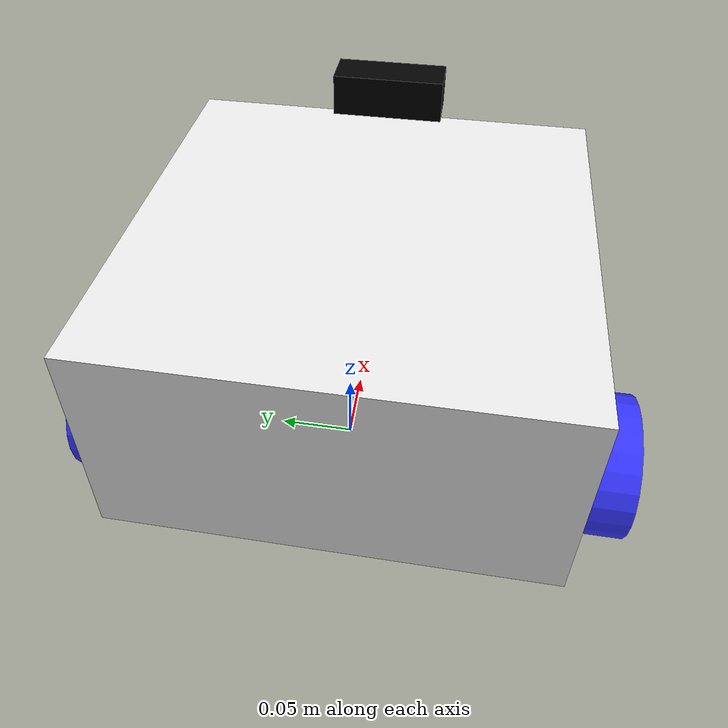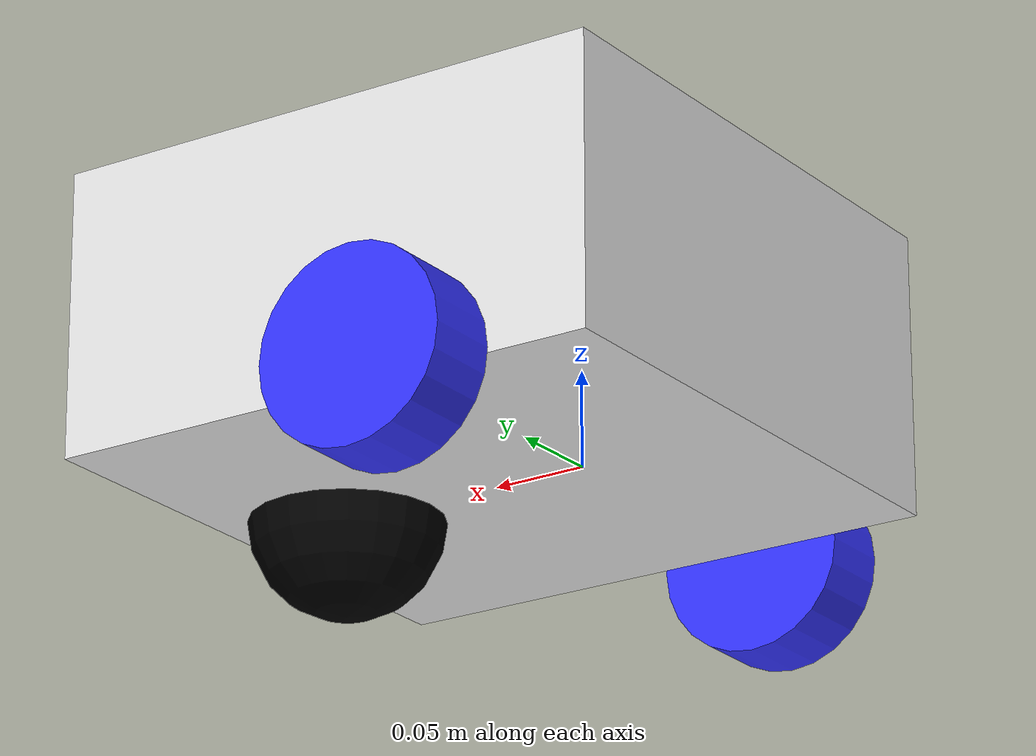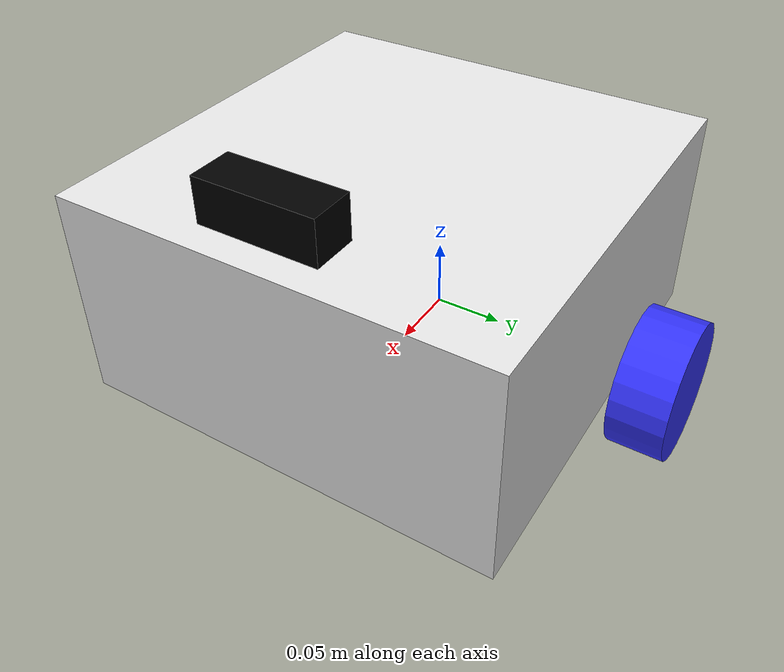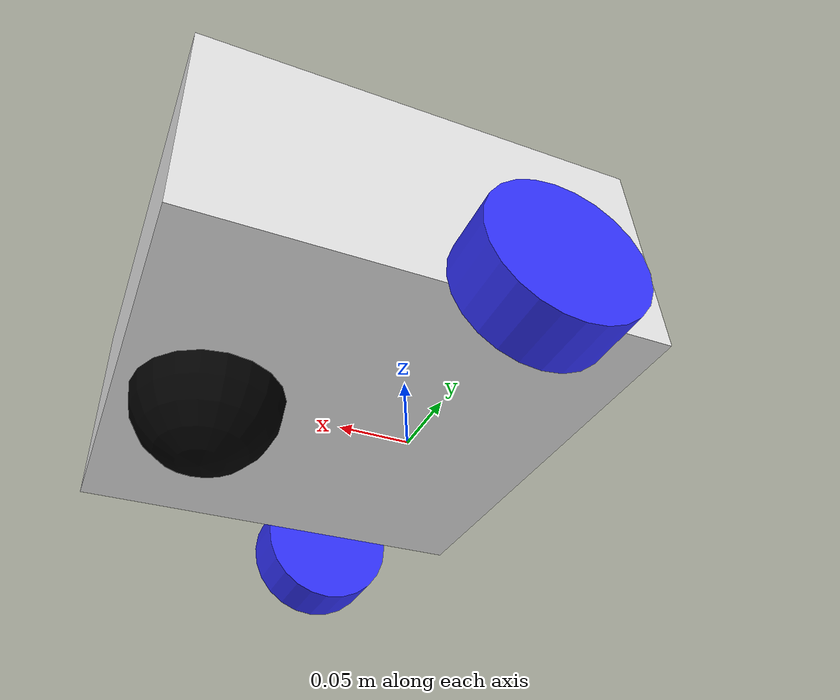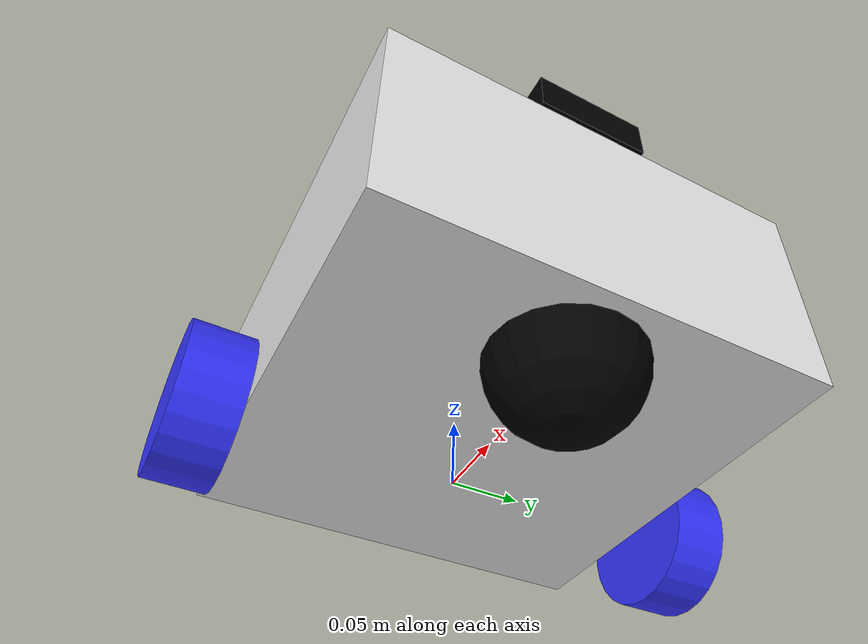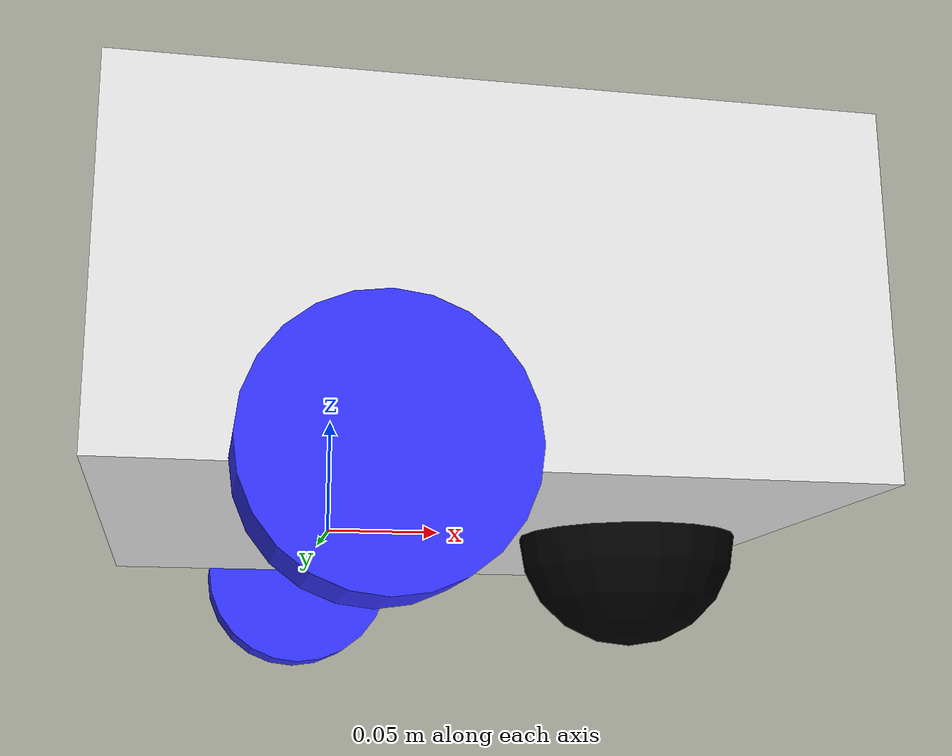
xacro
<?xml version="1.0"?>
<robot xmlns:xacro="http://www.ros.org/wiki/xacro" name="robot">

    <!-- Robot description-->
    <xacro:include filename="robot_core.xacro" />

    <xacro:include filename="gazebo_control.xacro" />

    <!-- Camera description -->
    <xacro:include filename="camera.xacro" />
</robot>

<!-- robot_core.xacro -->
<!-- Following: https://www.youtube.com/watch?v=BcjHyhV0kIs -->
<robot xmlns:xacro="http://www.ros.org/wiki/xacro" >

    <!-- Import intertia macros so they're easier to define-->
    <xacro:include filename="intertial_macros.xacro" />

    <material name="off_white">
        <color rgba="0.9 0.9 0.9 1" />
    </material>
    <material name="orange">
        <color rgba="1 0.3 0.1 1" />
    </material>
    <material name="blue">
        <color rgba="0.2 0.2 1 1" />
    </material>
    <material name="black">
        <color rgba="0 0 0 1" />
    </material>

    <!-- Base Link -->
    <link name="base_link">
    </link>

    <!-- Chassis Link -->

    <joint name="chassis_joint" type="fixed">
        <parent link="base_link" />
        <child link="chassis" />
        <origin xyz="-0.1 0 0"/>
    </joint>

    <link name="chassis">
        <visual>
            <origin xyz="0.15 0 0.075" />
            <geometry>
                <box size="0.3 0.3 0.15" />
            </geometry>
            <material name="off_white" />
        </visual>
        <collision>
            <origin xyz="0.15 0 0.075" />
            <geometry>
                <box size="0.3 0.3 0.15" />
            </geometry>
        </collision>
        <xacro:inertial_box mass="0.5" x="0.3" y="0.3" z="0.15">
            <origin xyz="0.15 0 0.075"  rpy="0 0 0 "/>
        </xacro:inertial_box>
    </link>

    <!-- Left Wheel Link -->
    <joint name="left_wheel_joint" type="continuous">
        <parent link="base_link" />
        <child link="left_wheel" />
        <!-- cylinders are oriented in z axis by default so we need to rotate  along x axis (right hand rule for sign)-->
        <origin xyz="0 0.175 0" rpy="-${pi/2} 0 0" />
        <!-- define the positve forward motion; since we rotated the wheel, the z axis is now pointing where y was so we want to rotate around z-->
        <axis xyz="0 0 1" />
    </joint>
    <link name="left_wheel">
        <visual>
            <geometry>
                <cylinder radius="0.05" length="0.04" /> <!-- 50 mm and 40 mm-->
            </geometry>
            <material name="blue" />
        </visual>
        <collision>
            <geometry>
                <cylinder radius="0.05" length="0.04" /> <!-- 50 mm and 40 mm-->
            </geometry>
        </collision>
        <xacro:inertial_cylinder mass="0.1" length="0.04" radius="0.05">
            <origin xyz="0 0 0"  rpy="0 0 0"/>
        </xacro:inertial_cylinder>
    </link>

    <!-- Right Wheel Link -->
    <joint name="right_wheel_joint" type="continuous">
        <parent link="base_link" />
        <child link="right_wheel" />
        <!-- cylinders are oriented in z axis by default so we need to rotate  along x axis (right hand rule for sign)-->
        <origin xyz="0 -0.175 0" rpy="${pi/2} 0 0" />
        <!-- define the positve forward motion; since we rotated the wheel, the z axis is now pointing where y was so we want to rotate around z-->
        <axis xyz="0 0 -1" />
    </joint>
    <link name="right_wheel">
        <visual>
            <geometry>
                <cylinder radius="0.05" length="0.04" /> <!-- 50 mm and 40 mm-->
            </geometry>
            <material name="blue" />
        </visual>
        <collision>
            <geometry>
                <cylinder radius="0.05" length="0.04" /> <!-- 50 mm and 40 mm-->
            </geometry>
        </collision>
        <xacro:inertial_cylinder mass="0.1" length="0.04" radius="0.05">
            <origin xyz="0 0 0"  rpy="0 0 0"/>
        </xacro:inertial_cylinder>
    </link>

    <!-- Caster Wheel Link -->
    <joint name="caster_wheel_joint" type="fixed">
        <parent link="chassis" />
        <child link="caster_wheel" />
        <origin xyz="0.24 0 0"/> <!-- Close to the front of the bot -->
    </joint>
    <link name="caster_wheel">
        <visual>
            <geometry>
                <sphere radius="0.05" />
            </geometry>
            <material name="black" />
        </visual>
        <collision>
            <geometry>
                <sphere radius="0.05" />
            </geometry>
        </collision>
        <xacro:inertial_sphere mass="0.1" radius="0.05">
            <origin xyz="0 0 0" rpy="0 0 0 " />
        </xacro:inertial_sphere>
    </link>

    <gazebo reference="caster_wheel">
        <mu1>0.001</mu1> <!-- mus make the caster wheel frictionless -->
        <mu2>0.001</mu2>
    </gazebo>

</robot>

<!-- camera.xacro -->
<robot xmlns:xacro="http://www.ros.org/wiki/xacro">

    <joint name="camera_joint" type="fixed">
        <parent link="chassis"/>
        <child link="camera_link"/>
        <origin xyz="0.28 0 0.18" rpy="0 0 0"/>
    </joint>

    <link name="camera_link">
        <visual>
        <geometry>
            <box size="0.03 0.08 0.03"/>
        </geometry>
        <material name="black"/>
        </visual>
    </link>

    <gazebo reference="camera_link">
        <sensor type="camera" name="camera">

            <!-- simplify the camera topic name -->
            <topic>camera/image</topic>

            <pose>0 0 0 0 0 0</pose>
            <visualize>true</visualize>

            <!-- 5 hz which is about 5 fps-->
            <update_rate>5</update_rate>
            <camera>
                <!-- field of view in radians-->
                <horizontal_fov>1.0</horizontal_fov>
                <image>
                    <width>640</width>
                    <height>480</height>
                    <format>R8G8B8</format>
                </image>
                <clip>
                    <!-- camera will only render objects if they are between [near, far] - units in meters -->
                    <near>0.05</near>
                    <far>20</far>
                </clip>
            </camera>

        </sensor>
    </gazebo>
</robot>
